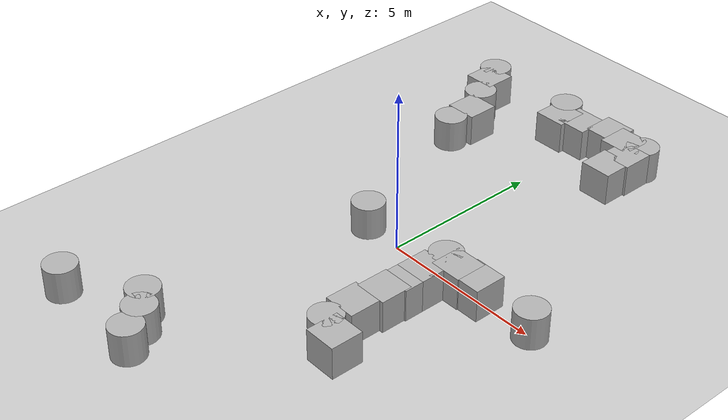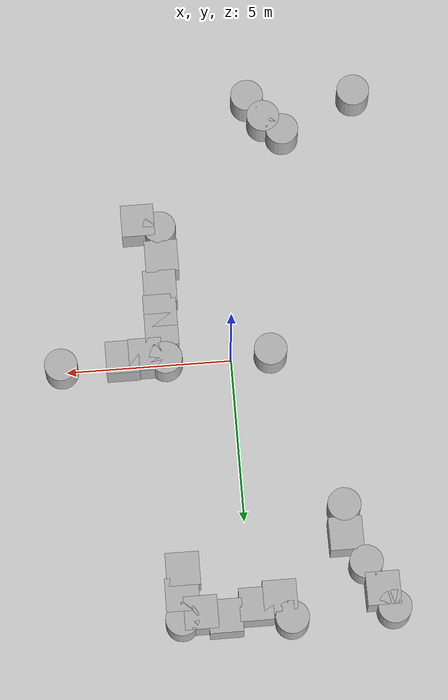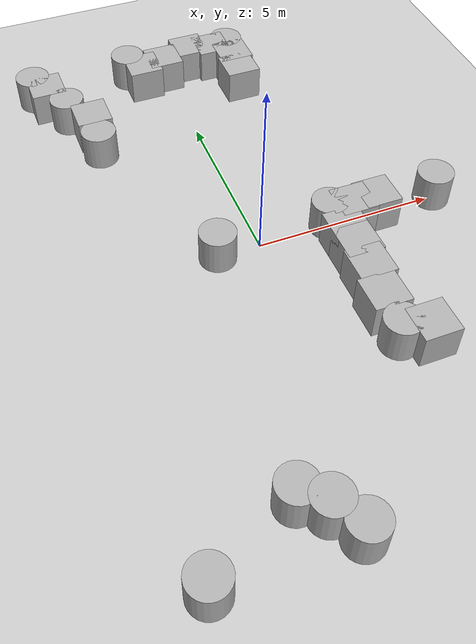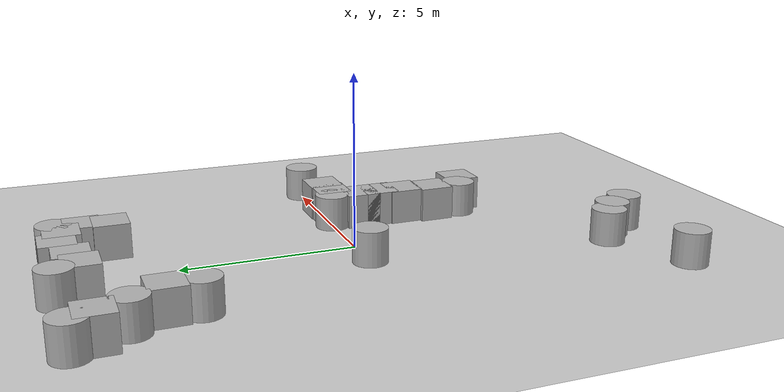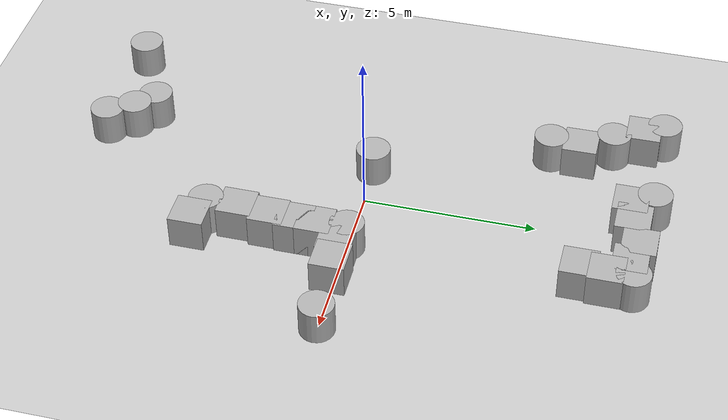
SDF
<sdf version='1.10'>
  <world name='default'>
    <gravity>0 0 -9.8000000000000007</gravity>
    <magnetic_field>5.5644999999999998e-06 2.2875799999999999e-05 -4.2388400000000002e-05</magnetic_field>
    <atmosphere type='adiabatic'/>
    <physics type='ode'>
      <max_step_size>0.001</max_step_size>
      <real_time_factor>1</real_time_factor>
      <real_time_update_rate>1000</real_time_update_rate>
    </physics>
    <scene>
      <ambient>0.400000006 0.400000006 0.400000006 1</ambient>
      <background>0.699999988 0.699999988 0.699999988 1</background>
      <shadows>true</shadows>
    </scene>
    <model name='ground_plane'>
      <static>true</static>
      <link name='link'>
        <collision name='collision'>
          <geometry>
            <plane>
              <normal>0 0 1</normal>
              <size>100 100</size>
            </plane>
          </geometry>
          <surface>
            <friction>
              <ode/>
            </friction>
            <bounce/>
            <contact/>
          </surface>
        </collision>
        <visual name='visual'>
          <geometry>
            <plane>
              <normal>0 0 1</normal>
              <size>100 100</size>
            </plane>
          </geometry>
          <material>
            <ambient>0.800000012 0.800000012 0.800000012 1</ambient>
            <diffuse>0.800000012 0.800000012 0.800000012 1</diffuse>
            <specular>0.800000012 0.800000012 0.800000012 1</specular>
          </material>
        </visual>
        <pose>0 0 0 0 0 0</pose>
        <inertial>
          <pose>0 0 0 0 0 0</pose>
          <mass>1</mass>
          <inertia>
            <ixx>1</ixx>
            <ixy>0</ixy>
            <ixz>0</ixz>
            <iyy>1</iyy>
            <iyz>0</iyz>
            <izz>1</izz>
          </inertia>
        </inertial>
        <enable_wind>false</enable_wind>
      </link>
      <pose>0 0 0 0 0 0</pose>
      <self_collide>false</self_collide>
    </model>
    <model name='cylinder'>
      <pose>5.1339255686091745 -0.010688066575636243 0.49999942638036005 -4.8616981091685394e-20 8.1439708289973324e-21 -1.1378218790353826e-20</pose>
      <link name='cylinder_link'>
        <inertial>
          <inertia>
            <ixx>0.14580000000000001</ixx>
            <ixy>0</ixy>
            <ixz>0</ixz>
            <iyy>0.14580000000000001</iyy>
            <iyz>0</iyz>
            <izz>0.125</izz>
          </inertia>
          <mass>1</mass>
          <pose>0 0 0 0 0 0</pose>
        </inertial>
        <collision name='cylinder_collision'>
          <geometry>
            <cylinder>
              <radius>0.5</radius>
              <length>1</length>
            </cylinder>
          </geometry>
          <surface>
            <friction>
              <ode/>
            </friction>
            <bounce/>
            <contact/>
          </surface>
        </collision>
        <visual name='cylinder_visual'>
          <geometry>
            <cylinder>
              <radius>0.5</radius>
              <length>1</length>
            </cylinder>
          </geometry>
          <material>
            <ambient>0.300000012 0.300000012 0.300000012 1</ambient>
            <diffuse>0.699999988 0.699999988 0.699999988 1</diffuse>
            <specular>1 1 1 1</specular>
          </material>
        </visual>
        <pose>0 0 0 0 0 0</pose>
        <enable_wind>false</enable_wind>
      </link>
      <static>true</static>
      <self_collide>false</self_collide>
    </model>
    <model name='cylinder_4'>
      <pose>2.0675740717681879 7.9972864193257305 0.50000001341551614 -2.3957694030748401e-08 3.3311986292573547e-08 -0.013354024430621482</pose>
      <link name='cylinder_link'>
        <inertial>
          <inertia>
            <ixx>0.14580000000000001</ixx>
            <ixy>0</ixy>
            <ixz>0</ixz>
            <iyy>0.14580000000000001</iyy>
            <iyz>0</iyz>
            <izz>0.125</izz>
          </inertia>
          <mass>1</mass>
          <pose>0 0 0 0 0 0</pose>
        </inertial>
        <collision name='cylinder_collision'>
          <geometry>
            <cylinder>
              <radius>0.5</radius>
              <length>1</length>
            </cylinder>
          </geometry>
          <surface>
            <friction>
              <ode/>
            </friction>
            <bounce/>
            <contact/>
          </surface>
        </collision>
        <visual name='cylinder_visual'>
          <geometry>
            <cylinder>
              <radius>0.5</radius>
              <length>1</length>
            </cylinder>
          </geometry>
          <material>
            <ambient>0.300000012 0.300000012 0.300000012 1</ambient>
            <diffuse>0.699999988 0.699999988 0.699999988 1</diffuse>
            <specular>1 1 1 1</specular>
          </material>
        </visual>
        <pose>0 0 0 0 0 0</pose>
        <enable_wind>false</enable_wind>
      </link>
      <static>true</static>
      <self_collide>false</self_collide>
    </model>
    <model name='cylinder_6'>
      <pose>1.9713147407692266 0.0010253494611404007 0.50000001388251591 -3.1598109268644514e-08 -2.5685923859197887e-08 0.00010239904911941941</pose>
      <link name='cylinder_link'>
        <inertial>
          <inertia>
            <ixx>0.14580000000000001</ixx>
            <ixy>0</ixy>
            <ixz>0</ixz>
            <iyy>0.14580000000000001</iyy>
            <iyz>0</iyz>
            <izz>0.125</izz>
          </inertia>
          <mass>1</mass>
          <pose>0 0 0 0 0 0</pose>
        </inertial>
        <collision name='cylinder_collision'>
          <geometry>
            <cylinder>
              <radius>0.5</radius>
              <length>1</length>
            </cylinder>
          </geometry>
          <surface>
            <friction>
              <ode/>
            </friction>
            <bounce/>
            <contact/>
          </surface>
        </collision>
        <visual name='cylinder_visual'>
          <geometry>
            <cylinder>
              <radius>0.5</radius>
              <length>1</length>
            </cylinder>
          </geometry>
          <material>
            <ambient>0.300000012 0.300000012 0.300000012 1</ambient>
            <diffuse>0.699999988 0.699999988 0.699999988 1</diffuse>
            <specular>1 1 1 1</specular>
          </material>
        </visual>
        <pose>0 0 0 0 0 0</pose>
        <enable_wind>false</enable_wind>
      </link>
      <static>true</static>
      <self_collide>false</self_collide>
    </model>
    <model name='cylinder_7'>
      <pose>1.8757283700455647 -4.1219304546341267 0.50000001283105588 3.1312134286685414e-08 -2.372114494846875e-08 0.004488733380426017</pose>
      <link name='cylinder_link'>
        <inertial>
          <inertia>
            <ixx>0.14580000000000001</ixx>
            <ixy>0</ixy>
            <ixz>0</ixz>
            <iyy>0.14580000000000001</iyy>
            <iyz>0</iyz>
            <izz>0.125</izz>
          </inertia>
          <mass>1</mass>
          <pose>0 0 0 0 0 0</pose>
        </inertial>
        <collision name='cylinder_collision'>
          <geometry>
            <cylinder>
              <radius>0.5</radius>
              <length>1</length>
            </cylinder>
          </geometry>
          <surface>
            <friction>
              <ode/>
            </friction>
            <bounce/>
            <contact/>
          </surface>
        </collision>
        <visual name='cylinder_visual'>
          <geometry>
            <cylinder>
              <radius>0.5</radius>
              <length>1</length>
            </cylinder>
          </geometry>
          <material>
            <ambient>0.300000012 0.300000012 0.300000012 1</ambient>
            <diffuse>0.699999988 0.699999988 0.699999988 1</diffuse>
            <specular>1 1 1 1</specular>
          </material>
        </visual>
        <pose>0 0 0 0 0 0</pose>
        <enable_wind>false</enable_wind>
      </link>
      <static>true</static>
      <self_collide>false</self_collide>
    </model>
    <model name='cylinder_9'>
      <pose>-1.1252659733289307 -8.1745646877291591 0.4999968993425119 2.0675781469958579e-06 8.773837203792143e-07 -0.0012256733541408926</pose>
      <link name='cylinder_link'>
        <inertial>
          <inertia>
            <ixx>0.14580000000000001</ixx>
            <ixy>0</ixy>
            <ixz>0</ixz>
            <iyy>0.14580000000000001</iyy>
            <iyz>0</iyz>
            <izz>0.125</izz>
          </inertia>
          <mass>1</mass>
          <pose>0 0 0 0 0 0</pose>
        </inertial>
        <collision name='cylinder_collision'>
          <geometry>
            <cylinder>
              <radius>0.5</radius>
              <length>1</length>
            </cylinder>
          </geometry>
          <surface>
            <friction>
              <ode/>
            </friction>
            <bounce/>
            <contact/>
          </surface>
        </collision>
        <visual name='cylinder_visual'>
          <geometry>
            <cylinder>
              <radius>0.5</radius>
              <length>1</length>
            </cylinder>
          </geometry>
          <material>
            <ambient>0.300000012 0.300000012 0.300000012 1</ambient>
            <diffuse>0.699999988 0.699999988 0.699999988 1</diffuse>
            <specular>1 1 1 1</specular>
          </material>
        </visual>
        <pose>0 0 0 0 0 0</pose>
        <enable_wind>false</enable_wind>
      </link>
      <static>true</static>
      <self_collide>false</self_collide>
    </model>
    <model name='cylinder_11'>
      <pose>-1.1948498299484551 -0.020219307220488866 0.49999942638036005 4.4863003604792616e-19 3.8006013583344366e-20 3.0475399066543794e-20</pose>
      <link name='cylinder_link'>
        <inertial>
          <inertia>
            <ixx>0.14580000000000001</ixx>
            <ixy>0</ixy>
            <ixz>0</ixz>
            <iyy>0.14580000000000001</iyy>
            <iyz>0</iyz>
            <izz>0.125</izz>
          </inertia>
          <mass>1</mass>
          <pose>0 0 0 0 0 0</pose>
        </inertial>
        <collision name='cylinder_collision'>
          <geometry>
            <cylinder>
              <radius>0.5</radius>
              <length>1</length>
            </cylinder>
          </geometry>
          <surface>
            <friction>
              <ode/>
            </friction>
            <bounce/>
            <contact/>
          </surface>
        </collision>
        <visual name='cylinder_visual'>
          <geometry>
            <cylinder>
              <radius>0.5</radius>
              <length>1</length>
            </cylinder>
          </geometry>
          <material>
            <ambient>0.300000012 0.300000012 0.300000012 1</ambient>
            <diffuse>0.699999988 0.699999988 0.699999988 1</diffuse>
            <specular>1 1 1 1</specular>
          </material>
        </visual>
        <pose>0 0 0 0 0 0</pose>
        <enable_wind>false</enable_wind>
      </link>
      <static>true</static>
      <self_collide>false</self_collide>
    </model>
    <model name='cylinder_13'>
      <pose>-1.1666517692970486 8.1811983356717892 0.50000068317484236 -1.483957784850245e-06 -6.0640065742630986e-07 -0.013596230486837025</pose>
      <link name='cylinder_link'>
        <inertial>
          <inertia>
            <ixx>0.14580000000000001</ixx>
            <ixy>0</ixy>
            <ixz>0</ixz>
            <iyy>0.14580000000000001</iyy>
            <iyz>0</iyz>
            <izz>0.125</izz>
          </inertia>
          <mass>1</mass>
          <pose>0 0 0 0 0 0</pose>
        </inertial>
        <collision name='cylinder_collision'>
          <geometry>
            <cylinder>
              <radius>0.5</radius>
              <length>1</length>
            </cylinder>
          </geometry>
          <surface>
            <friction>
              <ode/>
            </friction>
            <bounce/>
            <contact/>
          </surface>
        </collision>
        <visual name='cylinder_visual'>
          <geometry>
            <cylinder>
              <radius>0.5</radius>
              <length>1</length>
            </cylinder>
          </geometry>
          <material>
            <ambient>0.300000012 0.300000012 0.300000012 1</ambient>
            <diffuse>0.699999988 0.699999988 0.699999988 1</diffuse>
            <specular>1 1 1 1</specular>
          </material>
        </visual>
        <pose>0 0 0 0 0 0</pose>
        <enable_wind>false</enable_wind>
      </link>
      <static>true</static>
      <self_collide>false</self_collide>
    </model>
    <model name='cylinder_14'>
      <pose>-4.1987710286122804 8.1015637951249619 0.5000000106474044 -3.0421890213628959e-08 -1.827444829698815e-08 -0.0013145270494871147</pose>
      <link name='cylinder_link'>
        <inertial>
          <inertia>
            <ixx>0.14580000000000001</ixx>
            <ixy>0</ixy>
            <ixz>0</ixz>
            <iyy>0.14580000000000001</iyy>
            <iyz>0</iyz>
            <izz>0.125</izz>
          </inertia>
          <mass>1</mass>
          <pose>0 0 0 0 0 0</pose>
        </inertial>
        <collision name='cylinder_collision'>
          <geometry>
            <cylinder>
              <radius>0.5</radius>
              <length>1</length>
            </cylinder>
          </geometry>
          <surface>
            <friction>
              <ode/>
            </friction>
            <bounce/>
            <contact/>
          </surface>
        </collision>
        <visual name='cylinder_visual'>
          <geometry>
            <cylinder>
              <radius>0.5</radius>
              <length>1</length>
            </cylinder>
          </geometry>
          <material>
            <ambient>0.300000012 0.300000012 0.300000012 1</ambient>
            <diffuse>0.699999988 0.699999988 0.699999988 1</diffuse>
            <specular>1 1 1 1</specular>
          </material>
        </visual>
        <pose>0 0 0 0 0 0</pose>
        <enable_wind>false</enable_wind>
      </link>
      <static>true</static>
      <self_collide>false</self_collide>
    </model>
    <model name='cylinder_18'>
      <pose>-4.4054651072387996 -8.098530290577159 0.49999942638036005 1.2501544832168666e-19 -9.3177369233964667e-20 5.3720966670632648e-21</pose>
      <link name='cylinder_link'>
        <inertial>
          <inertia>
            <ixx>0.14580000000000001</ixx>
            <ixy>0</ixy>
            <ixz>0</ixz>
            <iyy>0.14580000000000001</iyy>
            <iyz>0</iyz>
            <izz>0.125</izz>
          </inertia>
          <mass>1</mass>
          <pose>0 0 0 0 0 0</pose>
        </inertial>
        <collision name='cylinder_collision'>
          <geometry>
            <cylinder>
              <radius>0.5</radius>
              <length>1</length>
            </cylinder>
          </geometry>
          <surface>
            <friction>
              <ode/>
            </friction>
            <bounce/>
            <contact/>
          </surface>
        </collision>
        <visual name='cylinder_visual'>
          <geometry>
            <cylinder>
              <radius>0.5</radius>
              <length>1</length>
            </cylinder>
          </geometry>
          <material>
            <ambient>0.300000012 0.300000012 0.300000012 1</ambient>
            <diffuse>0.699999988 0.699999988 0.699999988 1</diffuse>
            <specular>1 1 1 1</specular>
          </material>
        </visual>
        <pose>0 0 0 0 0 0</pose>
        <enable_wind>false</enable_wind>
      </link>
      <static>true</static>
      <self_collide>false</self_collide>
    </model>
    <model name='box'>
      <pose>2.0396650977060657 -0.88674154516385628 0.499999992943014 -2.5235158435296801e-08 -1.1399990360052859e-08 -4.6952874134504293e-07</pose>
      <link name='box_link'>
        <inertial>
          <inertia>
            <ixx>0.16666</ixx>
            <ixy>0</ixy>
            <ixz>0</ixz>
            <iyy>0.16666</iyy>
            <iyz>0</iyz>
            <izz>0.16666</izz>
          </inertia>
          <mass>1</mass>
          <pose>0 0 0 0 0 0</pose>
        </inertial>
        <collision name='box_collision'>
          <geometry>
            <box>
              <size>1 1 1</size>
            </box>
          </geometry>
          <surface>
            <friction>
              <ode/>
            </friction>
            <bounce/>
            <contact/>
          </surface>
        </collision>
        <visual name='box_visual'>
          <geometry>
            <box>
              <size>1 1 1</size>
            </box>
          </geometry>
          <material>
            <ambient>0.300000012 0.300000012 0.300000012 1</ambient>
            <diffuse>0.699999988 0.699999988 0.699999988 1</diffuse>
            <specular>1 1 1 1</specular>
          </material>
        </visual>
        <pose>0 0 0 0 0 0</pose>
        <enable_wind>false</enable_wind>
      </link>
      <static>true</static>
      <self_collide>false</self_collide>
    </model>
    <model name='box_0'>
      <pose>2.0396651992011523 -1.4875061143954251 0.49999999179751292 2.2281286904254818e-08 -5.9016828521190178e-09 -5.4661149755731441e-09</pose>
      <link name='box_link'>
        <inertial>
          <inertia>
            <ixx>0.16666</ixx>
            <ixy>0</ixy>
            <ixz>0</ixz>
            <iyy>0.16666</iyy>
            <iyz>0</iyz>
            <izz>0.16666</izz>
          </inertia>
          <mass>1</mass>
          <pose>0 0 0 0 0 0</pose>
        </inertial>
        <collision name='box_collision'>
          <geometry>
            <box>
              <size>1 1 1</size>
            </box>
          </geometry>
          <surface>
            <friction>
              <ode/>
            </friction>
            <bounce/>
            <contact/>
          </surface>
        </collision>
        <visual name='box_visual'>
          <geometry>
            <box>
              <size>1 1 1</size>
            </box>
          </geometry>
          <material>
            <ambient>0.300000012 0.300000012 0.300000012 1</ambient>
            <diffuse>0.699999988 0.699999988 0.699999988 1</diffuse>
            <specular>1 1 1 1</specular>
          </material>
        </visual>
        <pose>0 0 0 0 0 0</pose>
        <enable_wind>false</enable_wind>
      </link>
      <static>true</static>
      <self_collide>false</self_collide>
    </model>
    <model name='box_1'>
      <pose>2.5824257883487478 -0.14522849451453318 0.49999999112352439 -2.1388327810628955e-08 3.7111996525656546e-09 -0.00087988380716581968</pose>
      <link name='box_link'>
        <inertial>
          <inertia>
            <ixx>0.16666</ixx>
            <ixy>0</ixy>
            <ixz>0</ixz>
            <iyy>0.16666</iyy>
            <iyz>0</iyz>
            <izz>0.16666</izz>
          </inertia>
          <mass>1</mass>
          <pose>0 0 0 0 0 0</pose>
        </inertial>
        <collision name='box_collision'>
          <geometry>
            <box>
              <size>1 1 1</size>
            </box>
          </geometry>
          <surface>
            <friction>
              <ode/>
            </friction>
            <bounce/>
            <contact/>
          </surface>
        </collision>
        <visual name='box_visual'>
          <geometry>
            <box>
              <size>1 1 1</size>
            </box>
          </geometry>
          <material>
            <ambient>0.300000012 0.300000012 0.300000012 1</ambient>
            <diffuse>0.699999988 0.699999988 0.699999988 1</diffuse>
            <specular>1 1 1 1</specular>
          </material>
        </visual>
        <pose>0 0 0 0 0 0</pose>
        <enable_wind>false</enable_wind>
      </link>
      <static>true</static>
      <self_collide>false</self_collide>
    </model>
    <model name='box_2'>
      <pose>3.2759925734274749 -0.11769577026089247 0.49999999187879202 -6.4309711764668801e-09 2.2662428058407109e-08 -0.00032389552616337024</pose>
      <link name='box_link'>
        <inertial>
          <inertia>
            <ixx>0.16666</ixx>
            <ixy>0</ixy>
            <ixz>0</ixz>
            <iyy>0.16666</iyy>
            <iyz>0</iyz>
            <izz>0.16666</izz>
          </inertia>
          <mass>1</mass>
          <pose>0 0 0 0 0 0</pose>
        </inertial>
        <collision name='box_collision'>
          <geometry>
            <box>
              <size>1 1 1</size>
            </box>
          </geometry>
          <surface>
            <friction>
              <ode/>
            </friction>
            <bounce/>
            <contact/>
          </surface>
        </collision>
        <visual name='box_visual'>
          <geometry>
            <box>
              <size>1 1 1</size>
            </box>
          </geometry>
          <material>
            <ambient>0.300000012 0.300000012 0.300000012 1</ambient>
            <diffuse>0.699999988 0.699999988 0.699999988 1</diffuse>
            <specular>1 1 1 1</specular>
          </material>
        </visual>
        <pose>0 0 0 0 0 0</pose>
        <enable_wind>false</enable_wind>
      </link>
      <static>true</static>
      <self_collide>false</self_collide>
    </model>
    <model name='box_3'>
      <pose>1.9925061005648708 -2.2499334803921949 0.49999999065887141 2.045960421474986e-08 -1.8030705091177551e-09 -6.9794672173128207e-07</pose>
      <link name='box_link'>
        <inertial>
          <inertia>
            <ixx>0.16666</ixx>
            <ixy>0</ixy>
            <ixz>0</ixz>
            <iyy>0.16666</iyy>
            <iyz>0</iyz>
            <izz>0.16666</izz>
          </inertia>
          <mass>1</mass>
          <pose>0 0 0 0 0 0</pose>
        </inertial>
        <collision name='box_collision'>
          <geometry>
            <box>
              <size>1 1 1</size>
            </box>
          </geometry>
          <surface>
            <friction>
              <ode/>
            </friction>
            <bounce/>
            <contact/>
          </surface>
        </collision>
        <visual name='box_visual'>
          <geometry>
            <box>
              <size>1 1 1</size>
            </box>
          </geometry>
          <material>
            <ambient>0.300000012 0.300000012 0.300000012 1</ambient>
            <diffuse>0.699999988 0.699999988 0.699999988 1</diffuse>
            <specular>1 1 1 1</specular>
          </material>
        </visual>
        <pose>0 0 0 0 0 0</pose>
        <enable_wind>false</enable_wind>
      </link>
      <static>true</static>
      <self_collide>false</self_collide>
    </model>
    <model name='box_4'>
      <pose>1.8746075068478927 -3.2018940794090942 0.49999999703559761 3.3172658468116635e-08 -2.7358607888348347e-08 -1.0889262982512721e-06</pose>
      <link name='box_link'>
        <inertial>
          <inertia>
            <ixx>0.16666</ixx>
            <ixy>0</ixy>
            <ixz>0</ixz>
            <iyy>0.16666</iyy>
            <iyz>0</iyz>
            <izz>0.16666</izz>
          </inertia>
          <mass>1</mass>
          <pose>0 0 0 0 0 0</pose>
        </inertial>
        <collision name='box_collision'>
          <geometry>
            <box>
              <size>1 1 1</size>
            </box>
          </geometry>
          <surface>
            <friction>
              <ode/>
            </friction>
            <bounce/>
            <contact/>
          </surface>
        </collision>
        <visual name='box_visual'>
          <geometry>
            <box>
              <size>1 1 1</size>
            </box>
          </geometry>
          <material>
            <ambient>0.300000012 0.300000012 0.300000012 1</ambient>
            <diffuse>0.699999988 0.699999988 0.699999988 1</diffuse>
            <specular>1 1 1 1</specular>
          </material>
        </visual>
        <pose>0 0 0 0 0 0</pose>
        <enable_wind>false</enable_wind>
      </link>
      <static>true</static>
      <self_collide>false</self_collide>
    </model>
    <model name='box_5'>
      <pose>2.5183934015204956 -4.3857491643906545 0.49999999198969536 7.0946102836674477e-09 2.306634752379511e-08 1.3560461243981091e-05</pose>
      <link name='box_link'>
        <inertial>
          <inertia>
            <ixx>0.16666</ixx>
            <ixy>0</ixy>
            <ixz>0</ixz>
            <iyy>0.16666</iyy>
            <iyz>0</iyz>
            <izz>0.16666</izz>
          </inertia>
          <mass>1</mass>
          <pose>0 0 0 0 0 0</pose>
        </inertial>
        <collision name='box_collision'>
          <geometry>
            <box>
              <size>1 1 1</size>
            </box>
          </geometry>
          <surface>
            <friction>
              <ode/>
            </friction>
            <bounce/>
            <contact/>
          </surface>
        </collision>
        <visual name='box_visual'>
          <geometry>
            <box>
              <size>1 1 1</size>
            </box>
          </geometry>
          <material>
            <ambient>0.300000012 0.300000012 0.300000012 1</ambient>
            <diffuse>0.699999988 0.699999988 0.699999988 1</diffuse>
            <specular>1 1 1 1</specular>
          </material>
        </visual>
        <pose>0 0 0 0 0 0</pose>
        <enable_wind>false</enable_wind>
      </link>
      <static>true</static>
      <self_collide>false</self_collide>
    </model>
    <model name='box_6'>
      <pose>2.0160901017449486 7.2620703138286515 0.49999999066483647 1.599848927917283e-08 3.5075683572607619e-09 1.7720315104930904e-07</pose>
      <link name='box_link'>
        <inertial>
          <inertia>
            <ixx>0.16666</ixx>
            <ixy>0</ixy>
            <ixz>0</ixz>
            <iyy>0.16666</iyy>
            <iyz>0</iyz>
            <izz>0.16666</izz>
          </inertia>
          <mass>1</mass>
          <pose>0 0 0 0 0 0</pose>
        </inertial>
        <collision name='box_collision'>
          <geometry>
            <box>
              <size>1 1 1</size>
            </box>
          </geometry>
          <surface>
            <friction>
              <ode/>
            </friction>
            <bounce/>
            <contact/>
          </surface>
        </collision>
        <visual name='box_visual'>
          <geometry>
            <box>
              <size>1 1 1</size>
            </box>
          </geometry>
          <material>
            <ambient>0.300000012 0.300000012 0.300000012 1</ambient>
            <diffuse>0.699999988 0.699999988 0.699999988 1</diffuse>
            <specular>1 1 1 1</specular>
          </material>
        </visual>
        <pose>0 0 0 0 0 0</pose>
        <enable_wind>false</enable_wind>
      </link>
      <static>true</static>
      <self_collide>false</self_collide>
    </model>
    <model name='box_7'>
      <pose>1.9453511853986296 6.4991466890970138 0.49999999151729979 2.2110700926790339e-08 5.2928730305419979e-09 -1.0303518877148178e-07</pose>
      <link name='box_link'>
        <inertial>
          <inertia>
            <ixx>0.16666</ixx>
            <ixy>0</ixy>
            <ixz>0</ixz>
            <iyy>0.16666</iyy>
            <iyz>0</iyz>
            <izz>0.16666</izz>
          </inertia>
          <mass>1</mass>
          <pose>0 0 0 0 0 0</pose>
        </inertial>
        <collision name='box_collision'>
          <geometry>
            <box>
              <size>1 1 1</size>
            </box>
          </geometry>
          <surface>
            <friction>
              <ode/>
            </friction>
            <bounce/>
            <contact/>
          </surface>
        </collision>
        <visual name='box_visual'>
          <geometry>
            <box>
              <size>1 1 1</size>
            </box>
          </geometry>
          <material>
            <ambient>0.300000012 0.300000012 0.300000012 1</ambient>
            <diffuse>0.699999988 0.699999988 0.699999988 1</diffuse>
            <specular>1 1 1 1</specular>
          </material>
        </visual>
        <pose>0 0 0 0 0 0</pose>
        <enable_wind>false</enable_wind>
      </link>
      <static>true</static>
      <self_collide>false</self_collide>
    </model>
    <model name='box_8'>
      <pose>1.5067104997769858 7.8363936804125327 0.50000000167403891 -3.8636279510855228e-08 3.2017583230485671e-08 0.002426766713556113</pose>
      <link name='box_link'>
        <inertial>
          <inertia>
            <ixx>0.16666</ixx>
            <ixy>0</ixy>
            <ixz>0</ixz>
            <iyy>0.16666</iyy>
            <iyz>0</iyz>
            <izz>0.16666</izz>
          </inertia>
          <mass>1</mass>
          <pose>0 0 0 0 0 0</pose>
        </inertial>
        <collision name='box_collision'>
          <geometry>
            <box>
              <size>1 1 1</size>
            </box>
          </geometry>
          <surface>
            <friction>
              <ode/>
            </friction>
            <bounce/>
            <contact/>
          </surface>
        </collision>
        <visual name='box_visual'>
          <geometry>
            <box>
              <size>1 1 1</size>
            </box>
          </geometry>
          <material>
            <ambient>0.300000012 0.300000012 0.300000012 1</ambient>
            <diffuse>0.699999988 0.699999988 0.699999988 1</diffuse>
            <specular>1 1 1 1</specular>
          </material>
        </visual>
        <pose>0 0 0 0 0 0</pose>
        <enable_wind>false</enable_wind>
      </link>
      <static>true</static>
      <self_collide>false</self_collide>
    </model>
    <model name='box_9'>
      <pose>0.79065811055661483 7.9940283106962546 0.49999992561401146 1.1104211348309608e-07 1.0518270035276845e-08 0.0018193707481679879</pose>
      <link name='box_link'>
        <inertial>
          <inertia>
            <ixx>0.16666</ixx>
            <ixy>0</ixy>
            <ixz>0</ixz>
            <iyy>0.16666</iyy>
            <iyz>0</iyz>
            <izz>0.16666</izz>
          </inertia>
          <mass>1</mass>
          <pose>0 0 0 0 0 0</pose>
        </inertial>
        <collision name='box_collision'>
          <geometry>
            <box>
              <size>1 1 1</size>
            </box>
          </geometry>
          <surface>
            <friction>
              <ode/>
            </friction>
            <bounce/>
            <contact/>
          </surface>
        </collision>
        <visual name='box_visual'>
          <geometry>
            <box>
              <size>1 1 1</size>
            </box>
          </geometry>
          <material>
            <ambient>0.300000012 0.300000012 0.300000012 1</ambient>
            <diffuse>0.699999988 0.699999988 0.699999988 1</diffuse>
            <specular>1 1 1 1</specular>
          </material>
        </visual>
        <pose>0 0 0 0 0 0</pose>
        <enable_wind>false</enable_wind>
      </link>
      <static>true</static>
      <self_collide>false</self_collide>
    </model>
    <model name='box_10'>
      <pose>-0.13639111572539661 7.7106837379499886 0.49999962735321762 -7.273909025355667e-07 -2.7299198748007155e-08 0.0018198120023898722</pose>
      <link name='box_link'>
        <inertial>
          <inertia>
            <ixx>0.16666</ixx>
            <ixy>0</ixy>
            <ixz>0</ixz>
            <iyy>0.16666</iyy>
            <iyz>0</iyz>
            <izz>0.16666</izz>
          </inertia>
          <mass>1</mass>
          <pose>0 0 0 0 0 0</pose>
        </inertial>
        <collision name='box_collision'>
          <geometry>
            <box>
              <size>1 1 1</size>
            </box>
          </geometry>
          <surface>
            <friction>
              <ode/>
            </friction>
            <bounce/>
            <contact/>
          </surface>
        </collision>
        <visual name='box_visual'>
          <geometry>
            <box>
              <size>1 1 1</size>
            </box>
          </geometry>
          <material>
            <ambient>0.300000012 0.300000012 0.300000012 1</ambient>
            <diffuse>0.699999988 0.699999988 0.699999988 1</diffuse>
            <specular>1 1 1 1</specular>
          </material>
        </visual>
        <pose>0 0 0 0 0 0</pose>
        <enable_wind>false</enable_wind>
      </link>
      <static>true</static>
      <self_collide>false</self_collide>
    </model>
    <model name='sphere'>
      <pose>-0.85131183635415253 7.6453210299477972 0.49999998956991459 -0.010711999744045173 -0.028736730157292899 -0.030105624642132848</pose>
      <link name='sphere_link'>
        <inertial>
          <inertia>
            <ixx>0.10000000000000001</ixx>
            <ixy>0</ixy>
            <ixz>0</ixz>
            <iyy>0.10000000000000001</iyy>
            <iyz>0</iyz>
            <izz>0.10000000000000001</izz>
          </inertia>
          <mass>1</mass>
          <pose>0 0 0 0 0 0</pose>
        </inertial>
        <collision name='sphere_collision'>
          <geometry>
            <sphere>
              <radius>0.5</radius>
            </sphere>
          </geometry>
          <surface>
            <friction>
              <ode/>
            </friction>
            <bounce/>
            <contact/>
          </surface>
        </collision>
        <visual name='sphere_visual'>
          <geometry>
            <sphere>
              <radius>0.5</radius>
            </sphere>
          </geometry>
          <material>
            <ambient>0.300000012 0.300000012 0.300000012 1</ambient>
            <diffuse>0.699999988 0.699999988 0.699999988 1</diffuse>
            <specular>1 1 1 1</specular>
          </material>
        </visual>
        <pose>0 0 0 0 0 0</pose>
        <enable_wind>false</enable_wind>
      </link>
      <static>true</static>
      <self_collide>false</self_collide>
    </model>
    <model name='box_11'>
      <pose>-0.85039653300996954 7.5443479710339894 0.49999999950520402 3.2389193304509508e-08 -3.2624144979949974e-08 0.001833675750609121</pose>
      <link name='box_link'>
        <inertial>
          <inertia>
            <ixx>0.16666</ixx>
            <ixy>0</ixy>
            <ixz>0</ixz>
            <iyy>0.16666</iyy>
            <iyz>0</iyz>
            <izz>0.16666</izz>
          </inertia>
          <mass>1</mass>
          <pose>0 0 0 0 0 0</pose>
        </inertial>
        <collision name='box_collision'>
          <geometry>
            <box>
              <size>1 1 1</size>
            </box>
          </geometry>
          <surface>
            <friction>
              <ode/>
            </friction>
            <bounce/>
            <contact/>
          </surface>
        </collision>
        <visual name='box_visual'>
          <geometry>
            <box>
              <size>1 1 1</size>
            </box>
          </geometry>
          <material>
            <ambient>0.300000012 0.300000012 0.300000012 1</ambient>
            <diffuse>0.699999988 0.699999988 0.699999988 1</diffuse>
            <specular>1 1 1 1</specular>
          </material>
        </visual>
        <pose>0 0 0 0 0 0</pose>
        <enable_wind>false</enable_wind>
      </link>
      <static>true</static>
      <self_collide>false</self_collide>
    </model>
    <model name='box_12'>
      <pose>-3.905103209795767 7.5256920857705989 0.49999999012311258 -1.1009269138018755e-08 5.2187644291971178e-09 0.0077303662006954895</pose>
      <link name='box_link'>
        <inertial>
          <inertia>
            <ixx>0.16666</ixx>
            <ixy>0</ixy>
            <ixz>0</ixz>
            <iyy>0.16666</iyy>
            <iyz>0</iyz>
            <izz>0.16666</izz>
          </inertia>
          <mass>1</mass>
          <pose>0 0 0 0 0 0</pose>
        </inertial>
        <collision name='box_collision'>
          <geometry>
            <box>
              <size>1 1 1</size>
            </box>
          </geometry>
          <surface>
            <friction>
              <ode/>
            </friction>
            <bounce/>
            <contact/>
          </surface>
        </collision>
        <visual name='box_visual'>
          <geometry>
            <box>
              <size>1 1 1</size>
            </box>
          </geometry>
          <material>
            <ambient>0.300000012 0.300000012 0.300000012 1</ambient>
            <diffuse>0.699999988 0.699999988 0.699999988 1</diffuse>
            <specular>1 1 1 1</specular>
          </material>
        </visual>
        <pose>0 0 0 0 0 0</pose>
        <enable_wind>false</enable_wind>
      </link>
      <static>true</static>
      <self_collide>false</self_collide>
    </model>
    <model name='cylinder_0'>
      <pose>-3.4779265042487735 6.6964806463394373 0.49999994040533197 9.3482080547501423e-09 -3.8713529934835079e-09 3.8084608303329012e-10</pose>
      <link name='cylinder_link'>
        <inertial>
          <inertia>
            <ixx>0.14580000000000001</ixx>
            <ixy>0</ixy>
            <ixz>0</ixz>
            <iyy>0.14580000000000001</iyy>
            <iyz>0</iyz>
            <izz>0.125</izz>
          </inertia>
          <mass>1</mass>
          <pose>0 0 0 0 0 0</pose>
        </inertial>
        <collision name='cylinder_collision'>
          <geometry>
            <cylinder>
              <radius>0.5</radius>
              <length>1</length>
            </cylinder>
          </geometry>
          <surface>
            <friction>
              <ode/>
            </friction>
            <bounce/>
            <contact/>
          </surface>
        </collision>
        <visual name='cylinder_visual'>
          <geometry>
            <cylinder>
              <radius>0.5</radius>
              <length>1</length>
            </cylinder>
          </geometry>
          <material>
            <ambient>0.300000012 0.300000012 0.300000012 1</ambient>
            <diffuse>0.699999988 0.699999988 0.699999988 1</diffuse>
            <specular>1 1 1 1</specular>
          </material>
        </visual>
        <pose>0 0 0 0 0 0</pose>
        <enable_wind>false</enable_wind>
      </link>
      <static>true</static>
      <self_collide>false</self_collide>
    </model>
    <model name='box_13'>
      <pose>-2.9556788924297828 5.7969636307295751 0.49999999019785518 1.2796570640658156e-08 -5.8481597560681508e-09 0.0070257483493678229</pose>
      <link name='box_link'>
        <inertial>
          <inertia>
            <ixx>0.16666</ixx>
            <ixy>0</ixy>
            <ixz>0</ixz>
            <iyy>0.16666</iyy>
            <iyz>0</iyz>
            <izz>0.16666</izz>
          </inertia>
          <mass>1</mass>
          <pose>0 0 0 0 0 0</pose>
        </inertial>
        <collision name='box_collision'>
          <geometry>
            <box>
              <size>1 1 1</size>
            </box>
          </geometry>
          <surface>
            <friction>
              <ode/>
            </friction>
            <bounce/>
            <contact/>
          </surface>
        </collision>
        <visual name='box_visual'>
          <geometry>
            <box>
              <size>1 1 1</size>
            </box>
          </geometry>
          <material>
            <ambient>0.300000012 0.300000012 0.300000012 1</ambient>
            <diffuse>0.699999988 0.699999988 0.699999988 1</diffuse>
            <specular>1 1 1 1</specular>
          </material>
        </visual>
        <pose>0 0 0 0 0 0</pose>
        <enable_wind>false</enable_wind>
      </link>
      <static>true</static>
      <self_collide>false</self_collide>
    </model>
    <model name='cylinder_1'>
      <pose>-2.980342393076493 4.9174042579722634 0.50000000983333304 3.1592834395370023e-08 5.935925562104926e-09 -0.0064882873209767336</pose>
      <link name='cylinder_link'>
        <inertial>
          <inertia>
            <ixx>0.14580000000000001</ixx>
            <ixy>0</ixy>
            <ixz>0</ixz>
            <iyy>0.14580000000000001</iyy>
            <iyz>0</iyz>
            <izz>0.125</izz>
          </inertia>
          <mass>1</mass>
          <pose>0 0 0 0 0 0</pose>
        </inertial>
        <collision name='cylinder_collision'>
          <geometry>
            <cylinder>
              <radius>0.5</radius>
              <length>1</length>
            </cylinder>
          </geometry>
          <surface>
            <friction>
              <ode/>
            </friction>
            <bounce/>
            <contact/>
          </surface>
        </collision>
        <visual name='cylinder_visual'>
          <geometry>
            <cylinder>
              <radius>0.5</radius>
              <length>1</length>
            </cylinder>
          </geometry>
          <material>
            <ambient>0.300000012 0.300000012 0.300000012 1</ambient>
            <diffuse>0.699999988 0.699999988 0.699999988 1</diffuse>
            <specular>1 1 1 1</specular>
          </material>
        </visual>
        <pose>0 0 0 0 0 0</pose>
        <enable_wind>false</enable_wind>
      </link>
      <static>true</static>
      <self_collide>false</self_collide>
    </model>
    <model name='cylinder_2'>
      <pose>-1.5679144981051347 -7.4746045987291234 0.49999990832817554 4.5220909975965521e-07 -9.5370595017672057e-07 -2.4974729098540777e-05</pose>
      <link name='cylinder_link'>
        <inertial>
          <inertia>
            <ixx>0.14580000000000001</ixx>
            <ixy>0</ixy>
            <ixz>0</ixz>
            <iyy>0.14580000000000001</iyy>
            <iyz>0</iyz>
            <izz>0.125</izz>
          </inertia>
          <mass>1</mass>
          <pose>0 0 0 0 0 0</pose>
        </inertial>
        <collision name='cylinder_collision'>
          <geometry>
            <cylinder>
              <radius>0.5</radius>
              <length>1</length>
            </cylinder>
          </geometry>
          <surface>
            <friction>
              <ode/>
            </friction>
            <bounce/>
            <contact/>
          </surface>
        </collision>
        <visual name='cylinder_visual'>
          <geometry>
            <cylinder>
              <radius>0.5</radius>
              <length>1</length>
            </cylinder>
          </geometry>
          <material>
            <ambient>0.300000012 0.300000012 0.300000012 1</ambient>
            <diffuse>0.699999988 0.699999988 0.699999988 1</diffuse>
            <specular>1 1 1 1</specular>
          </material>
        </visual>
        <pose>0 0 0 0 0 0</pose>
        <enable_wind>false</enable_wind>
      </link>
      <static>true</static>
      <self_collide>false</self_collide>
    </model>
    <model name='cylinder_3'>
      <pose>-2.1166449861148711 -7.0008997945538907 0.49999746834357356 -1.5128658415454213e-06 -3.0436380555331768e-06 0.0050238238074966444</pose>
      <link name='cylinder_link'>
        <inertial>
          <inertia>
            <ixx>0.14580000000000001</ixx>
            <ixy>0</ixy>
            <ixz>0</ixz>
            <iyy>0.14580000000000001</iyy>
            <iyz>0</iyz>
            <izz>0.125</izz>
          </inertia>
          <mass>1</mass>
          <pose>0 0 0 0 0 0</pose>
        </inertial>
        <collision name='cylinder_collision'>
          <geometry>
            <cylinder>
              <radius>0.5</radius>
              <length>1</length>
            </cylinder>
          </geometry>
          <surface>
            <friction>
              <ode/>
            </friction>
            <bounce/>
            <contact/>
          </surface>
        </collision>
        <visual name='cylinder_visual'>
          <geometry>
            <cylinder>
              <radius>0.5</radius>
              <length>1</length>
            </cylinder>
          </geometry>
          <material>
            <ambient>0.300000012 0.300000012 0.300000012 1</ambient>
            <diffuse>0.699999988 0.699999988 0.699999988 1</diffuse>
            <specular>1 1 1 1</specular>
          </material>
        </visual>
        <pose>0 0 0 0 0 0</pose>
        <enable_wind>false</enable_wind>
      </link>
      <static>true</static>
      <self_collide>false</self_collide>
    </model>
    <light name='sun' type='directional'>
      <pose>0 0 10 0 0 0</pose>
      <cast_shadows>true</cast_shadows>
      <intensity>1</intensity>
      <direction>-0.5 0.10000000000000001 -0.90000000000000002</direction>
      <diffuse>0.800000012 0.800000012 0.800000012 1</diffuse>
      <specular>0.200000003 0.200000003 0.200000003 1</specular>
      <attenuation>
        <range>1000</range>
        <linear>0.01</linear>
        <constant>0.90000000000000002</constant>
        <quadratic>0.001</quadratic>
      </attenuation>
      <spot>
        <inner_angle>0</inner_angle>
        <outer_angle>0</outer_angle>
        <falloff>0</falloff>
      </spot>
    </light>
  </world>
</sdf>
